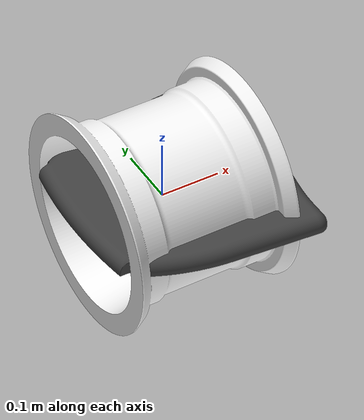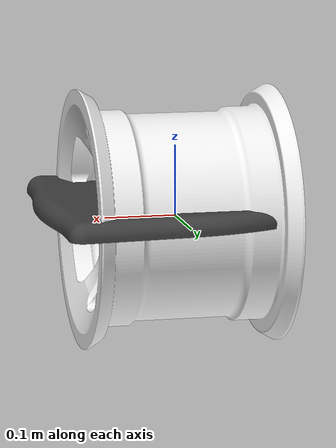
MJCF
<mujoco model="target">
  <compiler meshdir="assets" texturedir="assets" autolimits="true"/>
  <default>
    <default class="visual">
      <geom group="2" type="mesh" contype="0" conaffinity="0"/>
    </default>
    <default class="collision">
      <geom group="3" type="mesh"/>
    </default>
  </default>
  <asset>
    <material name="244,244,244" specular="0.9568629999999999" shininess="1.0" rgba="0.956863 0.956863 0.956863 1.000000"/>
    <material name="64,64,64" specular="1.0" shininess="1.0" rgba="0.250980 0.250980 0.250980 1.000000"/>
    <mesh file="object_0.obj"/>
    <mesh file="object_1.obj"/>
  </asset>
  <worldbody>
    <body name="object">
      <geom mesh="object_0" material="64,64,64" class="visual"/>
      <geom mesh="object_1" material="244,244,244" class="visual"/>
      <geom mesh="object_0" class="collision"/>
      <geom mesh="object_1" class="collision"/>
    </body>
  </worldbody>
</mujoco>
